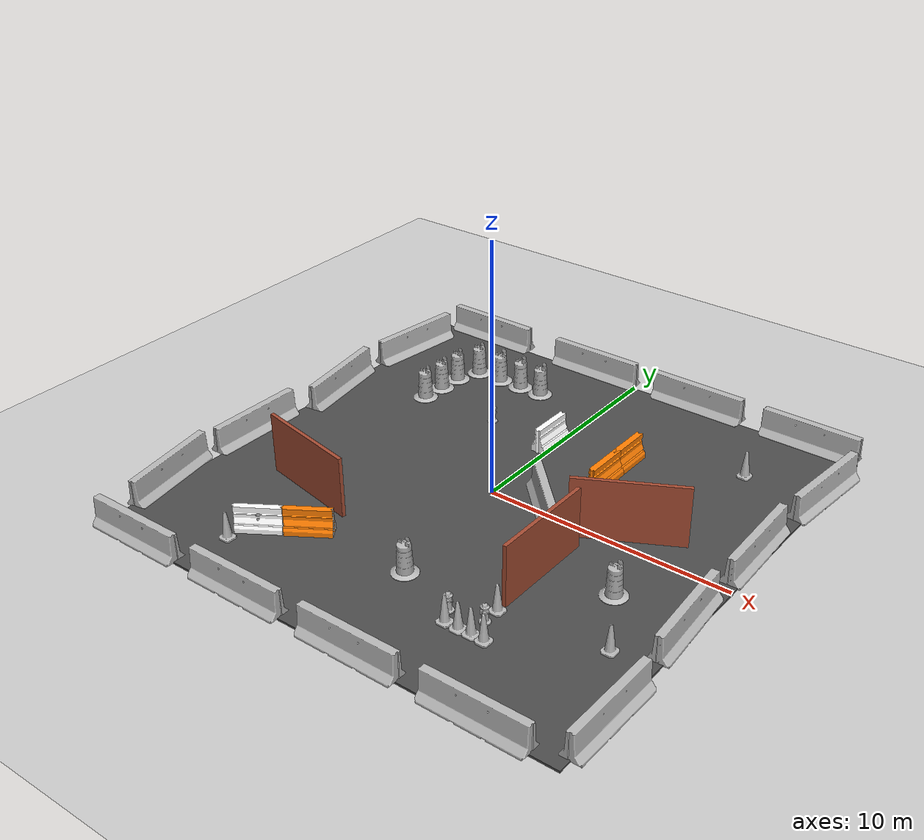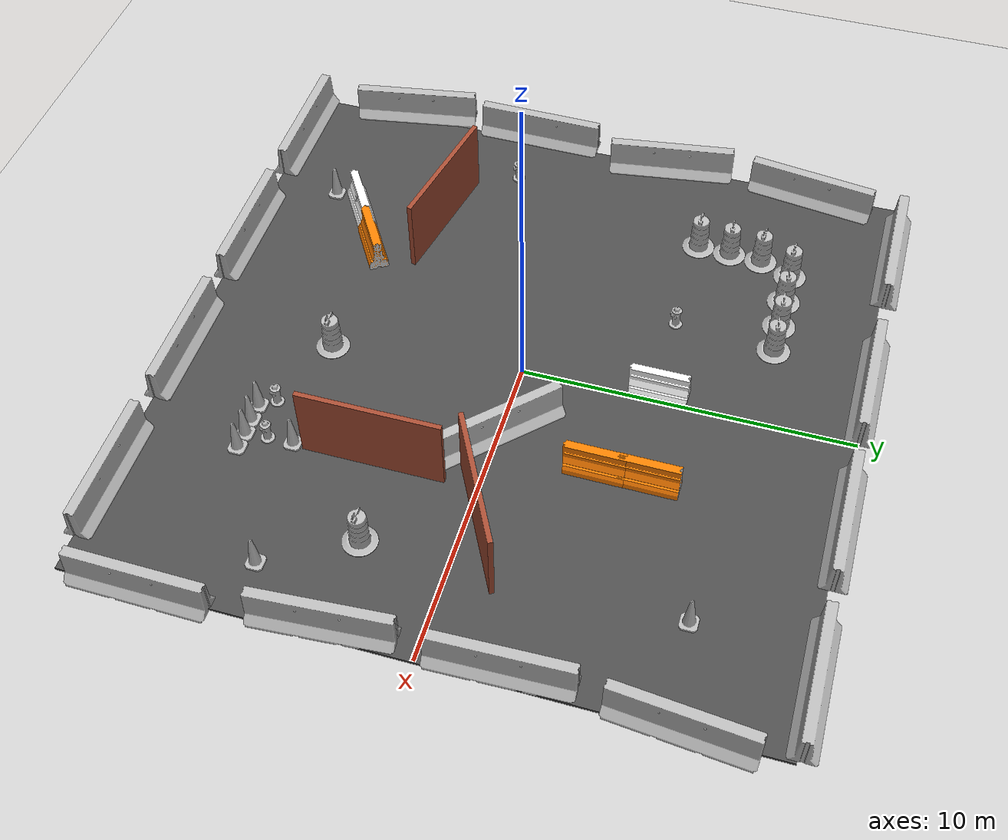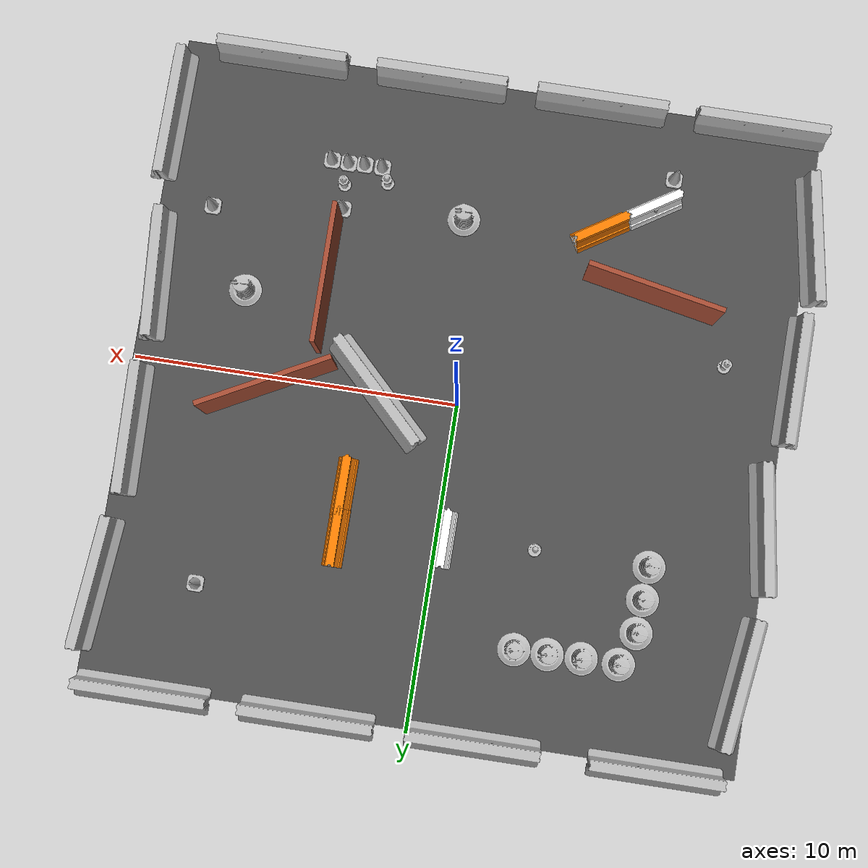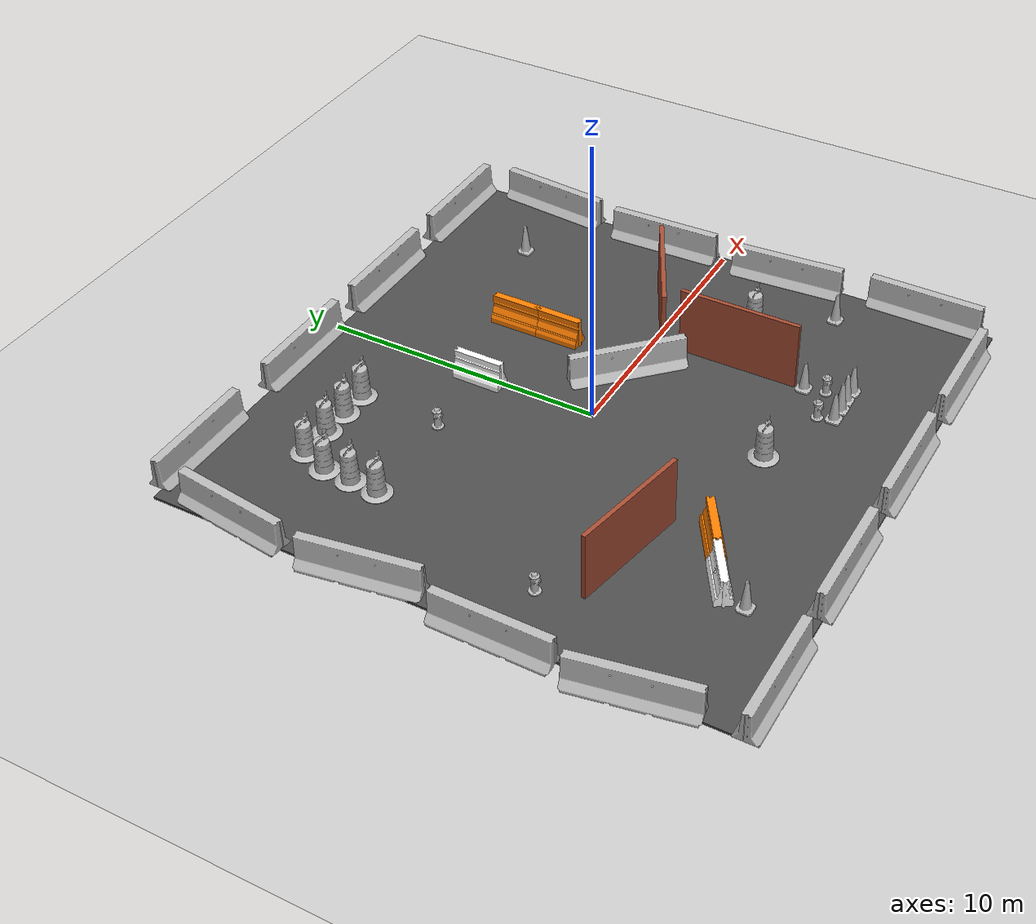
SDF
<sdf version="1.5">
 <world name="default">
  <light name="sun" type="directional">
   <pose>0 0 10 0 -0 0</pose>
   <diffuse>0.8 0.8 0.8 1</diffuse>
   <specular>0.2 0.2 0.2 1</specular>
   <attenuation>
    <range>1000</range>
    <constant>0.9</constant>
    <linear>0.01</linear>
    <quadratic>0.001</quadratic>
   </attenuation>
   <direction>-0.5 0.1 -0.9</direction>
  </light>
  <model name="ground_plane">
   <static>1</static>
   <link name="link">
    <collision name="collision">
     <geometry><plane><normal>0 0 1</normal><size>100 100</size></plane></geometry>
     <surface><friction><ode><mu>100</mu><mu2>50</mu2></ode></friction></surface>
    </collision>
    <visual name="visual">
     <cast_shadows>0</cast_shadows>
     <geometry><plane><normal>0 0 1</normal><size>100 100</size></plane></geometry>
     <material>
      <script><uri>file://media/materials/scripts/gazebo.material</uri><name>Gazebo/Grey</name></script>
     </material>
    </visual>
    <velocity_decay><linear>0</linear><angular>0</angular></velocity_decay>
   </link>
  </model>
  <physics name="default_physics" default="0" type="ode">
   <max_step_size>0.01</max_step_size>
   <real_time_factor>1</real_time_factor>
   <real_time_update_rate>100</real_time_update_rate>
   <gravity>0 0 -9.8</gravity>
   <magnetic_field>5.5645e-06 2.28758e-05 -4.23884e-05</magnetic_field>
  </physics>
  <scene><ambient>0.4 0.4 0.4 1</ambient><background>0.7 0.7 0.7 1</background><shadows>1</shadows></scene>
  <model name="jersey_barrier">
   <static>1</static>
   <link name="link">
    <visual name="visual">
     <geometry><mesh><uri>model://jersey_barrier/meshes/jersey_barrier.dae</uri></mesh></geometry>
    </visual>
    <collision name="upright">
     <pose>0 0 0.5715 0 -0 0</pose>
     <geometry><box><size>4.06542 0.3063 1.143</size></box></geometry>
    </collision>
    <collision name="base">
     <pose>0 0 0.032258 0 -0 0</pose>
     <geometry><box><size>4.06542 0.8107 0.064516</size></box></geometry>
    </collision>
    <collision name="base2">
     <pose>0 0 0.1 0 -0 0</pose>
     <geometry><box><size>4.06542 0.65 0.1</size></box></geometry>
    </collision>
    <collision name="base3">
     <pose>0 0 0.2 0 -0 0</pose>
     <geometry><box><size>4.06542 0.5 0.1</size></box></geometry>
    </collision>
    <collision name="left-angle">
     <pose>0 -0.224 0.2401 0.9 -0 0</pose>
     <geometry><box><size>4.06542 0.5 0.064516</size></box></geometry>
    </collision>
    <collision name="right-angle">
     <pose>0 0.224 0.2401 -0.9 0 0</pose>
     <geometry><box><size>4.06542 0.5 0.064516</size></box></geometry>
    </collision>
    <velocity_decay><linear>0</linear><angular>0</angular></velocity_decay>
   </link>
   <pose>-8 -10 0 0 -0 0</pose>
  </model>
  <model name="jersey_barrier_0">
   <static>1</static>
   <link name="link">
    <visual name="visual">
     <geometry><mesh><uri>model://jersey_barrier/meshes/jersey_barrier.dae</uri></mesh></geometry>
    </visual>
    <collision name="upright">
     <pose>0 0 0.5715 0 -0 0</pose>
     <geometry><box><size>4.06542 0.3063 1.143</size></box></geometry>
    </collision>
    <collision name="base">
     <pose>0 0 0.032258 0 -0 0</pose>
     <geometry><box><size>4.06542 0.8107 0.064516</size></box></geometry>
    </collision>
    <collision name="base2">
     <pose>0 0 0.1 0 -0 0</pose>
     <geometry><box><size>4.06542 0.65 0.1</size></box></geometry>
    </collision>
    <collision name="base3">
     <pose>0 0 0.2 0 -0 0</pose>
     <geometry><box><size>4.06542 0.5 0.1</size></box></geometry>
    </collision>
    <collision name="left-angle">
     <pose>0 -0.224 0.2401 0.9 -0 0</pose>
     <geometry><box><size>4.06542 0.5 0.064516</size></box></geometry>
    </collision>
    <collision name="right-angle">
     <pose>0 0.224 0.2401 -0.9 0 0</pose>
     <geometry><box><size>4.06542 0.5 0.064516</size></box></geometry>
    </collision>
    <velocity_decay><linear>0</linear><angular>0</angular></velocity_decay>
   </link>
   <pose>-3 -10 0 0 -0 0</pose>
  </model>
  <model name="jersey_barrier_1">
   <static>1</static>
   <link name="link">
    <visual name="visual">
     <geometry><mesh><uri>model://jersey_barrier/meshes/jersey_barrier.dae</uri></mesh></geometry>
    </visual>
    <collision name="upright">
     <pose>0 0 0.5715 0 -0 0</pose>
     <geometry><box><size>4.06542 0.3063 1.143</size></box></geometry>
    </collision>
    <collision name="base">
     <pose>0 0 0.032258 0 -0 0</pose>
     <geometry><box><size>4.06542 0.8107 0.064516</size></box></geometry>
    </collision>
    <collision name="base2">
     <pose>0 0 0.1 0 -0 0</pose>
     <geometry><box><size>4.06542 0.65 0.1</size></box></geometry>
    </collision>
    <collision name="base3">
     <pose>0 0 0.2 0 -0 0</pose>
     <geometry><box><size>4.06542 0.5 0.1</size></box></geometry>
    </collision>
    <collision name="left-angle">
     <pose>0 -0.224 0.2401 0.9 -0 0</pose>
     <geometry><box><size>4.06542 0.5 0.064516</size></box></geometry>
    </collision>
    <collision name="right-angle">
     <pose>0 0.224 0.2401 -0.9 0 0</pose>
     <geometry><box><size>4.06542 0.5 0.064516</size></box></geometry>
    </collision>
    <velocity_decay><linear>0</linear><angular>0</angular></velocity_decay>
   </link>
   <pose>2 -10 0 0 -0 0</pose>
  </model>
  <model name="jersey_barrier_2">
   <static>1</static>
   <link name="link">
    <visual name="visual">
     <geometry><mesh><uri>model://jersey_barrier/meshes/jersey_barrier.dae</uri></mesh></geometry>
    </visual>
    <collision name="upright">
     <pose>0 0 0.5715 0 -0 0</pose>
     <geometry><box><size>4.06542 0.3063 1.143</size></box></geometry>
    </collision>
    <collision name="base">
     <pose>0 0 0.032258 0 -0 0</pose>
     <geometry><box><size>4.06542 0.8107 0.064516</size></box></geometry>
    </collision>
    <collision name="base2">
     <pose>0 0 0.1 0 -0 0</pose>
     <geometry><box><size>4.06542 0.65 0.1</size></box></geometry>
    </collision>
    <collision name="base3">
     <pose>0 0 0.2 0 -0 0</pose>
     <geometry><box><size>4.06542 0.5 0.1</size></box></geometry>
    </collision>
    <collision name="left-angle">
     <pose>0 -0.224 0.2401 0.9 -0 0</pose>
     <geometry><box><size>4.06542 0.5 0.064516</size></box></geometry>
    </collision>
    <collision name="right-angle">
     <pose>0 0.224 0.2401 -0.9 0 0</pose>
     <geometry><box><size>4.06542 0.5 0.064516</size></box></geometry>
    </collision>
    <velocity_decay><linear>0</linear><angular>0</angular></velocity_decay>
   </link>
   <pose>7 -10 0 0 -0 0</pose>
  </model>
  <model name="jersey_barrier_3">
   <static>1</static>
   <link name="link">
    <visual name="visual">
     <geometry><mesh><uri>model://jersey_barrier/meshes/jersey_barrier.dae</uri></mesh></geometry>
    </visual>
    <collision name="upright">
     <pose>0 0 0.5715 0 -0 0</pose>
     <geometry><box><size>4.06542 0.3063 1.143</size></box></geometry>
    </collision>
    <collision name="base">
     <pose>0 0 0.032258 0 -0 0</pose>
     <geometry><box><size>4.06542 0.8107 0.064516</size></box></geometry>
    </collision>
    <collision name="base2">
     <pose>0 0 0.1 0 -0 0</pose>
     <geometry><box><size>4.06542 0.65 0.1</size></box></geometry>
    </collision>
    <collision name="base3">
     <pose>0 0 0.2 0 -0 0</pose>
     <geometry><box><size>4.06542 0.5 0.1</size></box></geometry>
    </collision>
    <collision name="left-angle">
     <pose>0 -0.224 0.2401 0.9 -0 0</pose>
     <geometry><box><size>4.06542 0.5 0.064516</size></box></geometry>
    </collision>
    <collision name="right-angle">
     <pose>0 0.224 0.2401 -0.9 0 0</pose>
     <geometry><box><size>4.06542 0.5 0.064516</size></box></geometry>
    </collision>
    <velocity_decay><linear>0</linear><angular>0</angular></velocity_decay>
   </link>
   <pose>-7.50675 10 0 0 -0 0</pose>
  </model>
  <model name="jersey_barrier_4">
   <static>1</static>
   <link name="link">
    <visual name="visual">
     <geometry><mesh><uri>model://jersey_barrier/meshes/jersey_barrier.dae</uri></mesh></geometry>
    </visual>
    <collision name="upright">
     <pose>0 0 0.5715 0 -0 0</pose>
     <geometry><box><size>4.06542 0.3063 1.143</size></box></geometry>
    </collision>
    <collision name="base">
     <pose>0 0 0.032258 0 -0 0</pose>
     <geometry><box><size>4.06542 0.8107 0.064516</size></box></geometry>
    </collision>
    <collision name="base2">
     <pose>0 0 0.1 0 -0 0</pose>
     <geometry><box><size>4.06542 0.65 0.1</size></box></geometry>
    </collision>
    <collision name="base3">
     <pose>0 0 0.2 0 -0 0</pose>
     <geometry><box><size>4.06542 0.5 0.1</size></box></geometry>
    </collision>
    <collision name="left-angle">
     <pose>0 -0.224 0.2401 0.9 -0 0</pose>
     <geometry><box><size>4.06542 0.5 0.064516</size></box></geometry>
    </collision>
    <collision name="right-angle">
     <pose>0 0.224 0.2401 -0.9 0 0</pose>
     <geometry><box><size>4.06542 0.5 0.064516</size></box></geometry>
    </collision>
    <velocity_decay><linear>0</linear><angular>0</angular></velocity_decay>
   </link>
   <pose>-2 10 0 0 -0 0</pose>
  </model>
  <model name="jersey_barrier_5">
   <static>1</static>
   <link name="link">
    <visual name="visual">
     <geometry><mesh><uri>model://jersey_barrier/meshes/jersey_barrier.dae</uri></mesh></geometry>
    </visual>
    <collision name="upright">
     <pose>0 0 0.5715 0 -0 0</pose>
     <geometry><box><size>4.06542 0.3063 1.143</size></box></geometry>
    </collision>
    <collision name="base">
     <pose>0 0 0.032258 0 -0 0</pose>
     <geometry><box><size>4.06542 0.8107 0.064516</size></box></geometry>
    </collision>
    <collision name="base2">
     <pose>0 0 0.1 0 -0 0</pose>
     <geometry><box><size>4.06542 0.65 0.1</size></box></geometry>
    </collision>
    <collision name="base3">
     <pose>0 0 0.2 0 -0 0</pose>
     <geometry><box><size>4.06542 0.5 0.1</size></box></geometry>
    </collision>
    <collision name="left-angle">
     <pose>0 -0.224 0.2401 0.9 -0 0</pose>
     <geometry><box><size>4.06542 0.5 0.064516</size></box></geometry>
    </collision>
    <collision name="right-angle">
     <pose>0 0.224 0.2401 -0.9 0 0</pose>
     <geometry><box><size>4.06542 0.5 0.064516</size></box></geometry>
    </collision>
    <velocity_decay><linear>0</linear><angular>0</angular></velocity_decay>
   </link>
   <pose>3 10 0 0 -0 0</pose>
  </model>
  <model name="jersey_barrier_6">
   <static>1</static>
   <link name="link">
    <visual name="visual">
     <geometry><mesh><uri>model://jersey_barrier/meshes/jersey_barrier.dae</uri></mesh></geometry>
    </visual>
    <collision name="upright">
     <pose>0 0 0.5715 0 -0 0</pose>
     <geometry><box><size>4.06542 0.3063 1.143</size></box></geometry>
    </collision>
    <collision name="base">
     <pose>0 0 0.032258 0 -0 0</pose>
     <geometry><box><size>4.06542 0.8107 0.064516</size></box></geometry>
    </collision>
    <collision name="base2">
     <pose>0 0 0.1 0 -0 0</pose>
     <geometry><box><size>4.06542 0.65 0.1</size></box></geometry>
    </collision>
    <collision name="base3">
     <pose>0 0 0.2 0 -0 0</pose>
     <geometry><box><size>4.06542 0.5 0.1</size></box></geometry>
    </collision>
    <collision name="left-angle">
     <pose>0 -0.224 0.2401 0.9 -0 0</pose>
     <geometry><box><size>4.06542 0.5 0.064516</size></box></geometry>
    </collision>
    <collision name="right-angle">
     <pose>0 0.224 0.2401 -0.9 0 0</pose>
     <geometry><box><size>4.06542 0.5 0.064516</size></box></geometry>
    </collision>
    <velocity_decay><linear>0</linear><angular>0</angular></velocity_decay>
   </link>
   <pose>8 10 0 0 -0 0</pose>
  </model>
  <model name="jersey_barrier_7">
   <static>1</static>
   <link name="link">
    <visual name="visual">
     <geometry><mesh><uri>model://jersey_barrier/meshes/jersey_barrier.dae</uri></mesh></geometry>
    </visual>
    <collision name="upright">
     <pose>0 0 0.5715 0 -0 0</pose>
     <geometry><box><size>4.06542 0.3063 1.143</size></box></geometry>
    </collision>
    <collision name="base">
     <pose>0 0 0.032258 0 -0 0</pose>
     <geometry><box><size>4.06542 0.8107 0.064516</size></box></geometry>
    </collision>
    <collision name="base2">
     <pose>0 0 0.1 0 -0 0</pose>
     <geometry><box><size>4.06542 0.65 0.1</size></box></geometry>
    </collision>
    <collision name="base3">
     <pose>0 0 0.2 0 -0 0</pose>
     <geometry><box><size>4.06542 0.5 0.1</size></box></geometry>
    </collision>
    <collision name="left-angle">
     <pose>0 -0.224 0.2401 0.9 -0 0</pose>
     <geometry><box><size>4.06542 0.5 0.064516</size></box></geometry>
    </collision>
    <collision name="right-angle">
     <pose>0 0.224 0.2401 -0.9 0 0</pose>
     <geometry><box><size>4.06542 0.5 0.064516</size></box></geometry>
    </collision>
    <velocity_decay><linear>0</linear><angular>0</angular></velocity_decay>
   </link>
   <pose>9.74902 -2.57759 0 0 -0 1.64</pose>
  </model>
  <model name="jersey_barrier_8">
   <static>1</static>
   <link name="link">
    <visual name="visual">
     <geometry><mesh><uri>model://jersey_barrier/meshes/jersey_barrier.dae</uri></mesh></geometry>
    </visual>
    <collision name="upright">
     <pose>0 0 0.5715 0 -0 0</pose>
     <geometry><box><size>4.06542 0.3063 1.143</size></box></geometry>
    </collision>
    <collision name="base">
     <pose>0 0 0.032258 0 -0 0</pose>
     <geometry><box><size>4.06542 0.8107 0.064516</size></box></geometry>
    </collision>
    <collision name="base2">
     <pose>0 0 0.1 0 -0 0</pose>
     <geometry><box><size>4.06542 0.65 0.1</size></box></geometry>
    </collision>
    <collision name="base3">
     <pose>0 0 0.2 0 -0 0</pose>
     <geometry><box><size>4.06542 0.5 0.1</size></box></geometry>
    </collision>
    <collision name="left-angle">
     <pose>0 -0.224 0.2401 0.9 -0 0</pose>
     <geometry><box><size>4.06542 0.5 0.064516</size></box></geometry>
    </collision>
    <collision name="right-angle">
     <pose>0 0.224 0.2401 -0.9 0 0</pose>
     <geometry><box><size>4.06542 0.5 0.064516</size></box></geometry>
    </collision>
    <velocity_decay><linear>0</linear><angular>0</angular></velocity_decay>
   </link>
   <pose>9.70141 2.24369 0 0 -0 1.6</pose>
  </model>
  <model name="jersey_barrier_9">
   <static>1</static>
   <link name="link">
    <visual name="visual">
     <geometry><mesh><uri>model://jersey_barrier/meshes/jersey_barrier.dae</uri></mesh></geometry>
    </visual>
    <collision name="upright">
     <pose>0 0 0.5715 0 -0 0</pose>
     <geometry><box><size>4.06542 0.3063 1.143</size></box></geometry>
    </collision>
    <collision name="base">
     <pose>0 0 0.032258 0 -0 0</pose>
     <geometry><box><size>4.06542 0.8107 0.064516</size></box></geometry>
    </collision>
    <collision name="base2">
     <pose>0 0 0.1 0 -0 0</pose>
     <geometry><box><size>4.06542 0.65 0.1</size></box></geometry>
    </collision>
    <collision name="base3">
     <pose>0 0 0.2 0 -0 0</pose>
     <geometry><box><size>4.06542 0.5 0.1</size></box></geometry>
    </collision>
    <collision name="left-angle">
     <pose>0 -0.224 0.2401 0.9 -0 0</pose>
     <geometry><box><size>4.06542 0.5 0.064516</size></box></geometry>
    </collision>
    <collision name="right-angle">
     <pose>0 0.224 0.2401 -0.9 0 0</pose>
     <geometry><box><size>4.06542 0.5 0.064516</size></box></geometry>
    </collision>
    <velocity_decay><linear>0</linear><angular>0</angular></velocity_decay>
   </link>
   <pose>-10.0607 -6.69856 0 0 0 -1.4</pose>
  </model>
  <model name="jersey_barrier_10">
   <static>1</static>
   <link name="link">
    <visual name="visual">
     <geometry><mesh><uri>model://jersey_barrier/meshes/jersey_barrier.dae</uri></mesh></geometry>
    </visual>
    <collision name="upright">
     <pose>0 0 0.5715 0 -0 0</pose>
     <geometry><box><size>4.06542 0.3063 1.143</size></box></geometry>
    </collision>
    <collision name="base">
     <pose>0 0 0.032258 0 -0 0</pose>
     <geometry><box><size>4.06542 0.8107 0.064516</size></box></geometry>
    </collision>
    <collision name="base2">
     <pose>0 0 0.1 0 -0 0</pose>
     <geometry><box><size>4.06542 0.65 0.1</size></box></geometry>
    </collision>
    <collision name="base3">
     <pose>0 0 0.2 0 -0 0</pose>
     <geometry><box><size>4.06542 0.5 0.1</size></box></geometry>
    </collision>
    <collision name="left-angle">
     <pose>0 -0.224 0.2401 0.9 -0 0</pose>
     <geometry><box><size>4.06542 0.5 0.064516</size></box></geometry>
    </collision>
    <collision name="right-angle">
     <pose>0 0.224 0.2401 -0.9 0 0</pose>
     <geometry><box><size>4.06542 0.5 0.064516</size></box></geometry>
    </collision>
    <velocity_decay><linear>0</linear><angular>0</angular></velocity_decay>
   </link>
   <pose>-10.0774 -2.27159 0 0 -0 1.56</pose>
  </model>
  <model name="jersey_barrier_11">
   <static>1</static>
   <link name="link">
    <visual name="visual">
     <geometry><mesh><uri>model://jersey_barrier/meshes/jersey_barrier.dae</uri></mesh></geometry>
    </visual>
    <collision name="upright">
     <pose>0 0 0.5715 0 -0 0</pose>
     <geometry><box><size>4.06542 0.3063 1.143</size></box></geometry>
    </collision>
    <collision name="base">
     <pose>0 0 0.032258 0 -0 0</pose>
     <geometry><box><size>4.06542 0.8107 0.064516</size></box></geometry>
    </collision>
    <collision name="base2">
     <pose>0 0 0.1 0 -0 0</pose>
     <geometry><box><size>4.06542 0.65 0.1</size></box></geometry>
    </collision>
    <collision name="base3">
     <pose>0 0 0.2 0 -0 0</pose>
     <geometry><box><size>4.06542 0.5 0.1</size></box></geometry>
    </collision>
    <collision name="left-angle">
     <pose>0 -0.224 0.2401 0.9 -0 0</pose>
     <geometry><box><size>4.06542 0.5 0.064516</size></box></geometry>
    </collision>
    <collision name="right-angle">
     <pose>0 0.224 0.2401 -0.9 0 0</pose>
     <geometry><box><size>4.06542 0.5 0.064516</size></box></geometry>
    </collision>
    <velocity_decay><linear>0</linear><angular>0</angular></velocity_decay>
   </link>
   <pose>-9.77013 2.34791 0 0 -0 1.72</pose>
  </model>
  <model name="jersey_barrier_12">
   <static>1</static>
   <link name="link">
    <visual name="visual">
     <geometry><mesh><uri>model://jersey_barrier/meshes/jersey_barrier.dae</uri></mesh></geometry>
    </visual>
    <collision name="upright">
     <pose>0 0 0.5715 0 -0 0</pose>
     <geometry><box><size>4.06542 0.3063 1.143</size></box></geometry>
    </collision>
    <collision name="base">
     <pose>0 0 0.032258 0 -0 0</pose>
     <geometry><box><size>4.06542 0.8107 0.064516</size></box></geometry>
    </collision>
    <collision name="base2">
     <pose>0 0 0.1 0 -0 0</pose>
     <geometry><box><size>4.06542 0.65 0.1</size></box></geometry>
    </collision>
    <collision name="base3">
     <pose>0 0 0.2 0 -0 0</pose>
     <geometry><box><size>4.06542 0.5 0.1</size></box></geometry>
    </collision>
    <collision name="left-angle">
     <pose>0 -0.224 0.2401 0.9 -0 0</pose>
     <geometry><box><size>4.06542 0.5 0.064516</size></box></geometry>
    </collision>
    <collision name="right-angle">
     <pose>0 0.224 0.2401 -0.9 0 0</pose>
     <geometry><box><size>4.06542 0.5 0.064516</size></box></geometry>
    </collision>
    <velocity_decay><linear>0</linear><angular>0</angular></velocity_decay>
   </link>
   <pose>10.0879 -7.62159 0 0 -0 1.56</pose>
  </model>
  <model name="jersey_barrier_13">
   <static>1</static>
   <link name="link">
    <visual name="visual">
     <geometry><mesh><uri>model://jersey_barrier/meshes/jersey_barrier.dae</uri></mesh></geometry>
    </visual>
    <collision name="upright">
     <pose>0 0 0.5715 0 -0 0</pose>
     <geometry><box><size>4.06542 0.3063 1.143</size></box></geometry>
    </collision>
    <collision name="base">
     <pose>0 0 0.032258 0 -0 0</pose>
     <geometry><box><size>4.06542 0.8107 0.064516</size></box></geometry>
    </collision>
    <collision name="base2">
     <pose>0 0 0.1 0 -0 0</pose>
     <geometry><box><size>4.06542 0.65 0.1</size></box></geometry>
    </collision>
    <collision name="base3">
     <pose>0 0 0.2 0 -0 0</pose>
     <geometry><box><size>4.06542 0.5 0.1</size></box></geometry>
    </collision>
    <collision name="left-angle">
     <pose>0 -0.224 0.2401 0.9 -0 0</pose>
     <geometry><box><size>4.06542 0.5 0.064516</size></box></geometry>
    </collision>
    <collision name="right-angle">
     <pose>0 0.224 0.2401 -0.9 0 0</pose>
     <geometry><box><size>4.06542 0.5 0.064516</size></box></geometry>
    </collision>
    <velocity_decay><linear>0</linear><angular>0</angular></velocity_decay>
   </link>
   <pose>10 7 0 0 -0 1.48</pose>
  </model>
  <model name="jersey_barrier_14">
   <static>1</static>
   <link name="link">
    <visual name="visual">
     <geometry><mesh><uri>model://jersey_barrier/meshes/jersey_barrier.dae</uri></mesh></geometry>
    </visual>
    <collision name="upright">
     <pose>0 0 0.5715 0 -0 0</pose>
     <geometry><box><size>4.06542 0.3063 1.143</size></box></geometry>
    </collision>
    <collision name="base">
     <pose>0 0 0.032258 0 -0 0</pose>
     <geometry><box><size>4.06542 0.8107 0.064516</size></box></geometry>
    </collision>
    <collision name="base2">
     <pose>0 0 0.1 0 -0 0</pose>
     <geometry><box><size>4.06542 0.65 0.1</size></box></geometry>
    </collision>
    <collision name="base3">
     <pose>0 0 0.2 0 -0 0</pose>
     <geometry><box><size>4.06542 0.5 0.1</size></box></geometry>
    </collision>
    <collision name="left-angle">
     <pose>0 -0.224 0.2401 0.9 -0 0</pose>
     <geometry><box><size>4.06542 0.5 0.064516</size></box></geometry>
    </collision>
    <collision name="right-angle">
     <pose>0 0.224 0.2401 -0.9 0 0</pose>
     <geometry><box><size>4.06542 0.5 0.064516</size></box></geometry>
    </collision>
    <velocity_decay><linear>0</linear><angular>0</angular></velocity_decay>
   </link>
   <pose>-9.64482 7.05946 0 0 -0 1.44</pose>
  </model>
  <model name="fire_hydrant">
   <static>1</static>
   <link name="link">
    <collision name="collision">
     <geometry><mesh><uri>model://fire_hydrant/meshes/fire_hydrant.dae</uri></mesh></geometry>
    </collision>
    <visual name="visual">
     <geometry><mesh><uri>model://fire_hydrant/meshes/fire_hydrant.dae</uri></mesh></geometry>
    </visual>
    <velocity_decay><linear>0</linear><angular>0</angular></velocity_decay>
   </link>
   <pose>3.18024 -6.51118 0 0 -0 0</pose>
  </model>
  <model name="fire_hydrant_0">
   <static>1</static>
   <link name="link">
    <collision name="collision">
     <geometry><mesh><uri>model://fire_hydrant/meshes/fire_hydrant.dae</uri></mesh></geometry>
    </collision>
    <visual name="visual">
     <geometry><mesh><uri>model://fire_hydrant/meshes/fire_hydrant.dae</uri></mesh></geometry>
    </visual>
    <velocity_decay><linear>0</linear><angular>0</angular></velocity_decay>
   </link>
   <pose>-3 4 0 0 -0 0</pose>
  </model>
  <model name="fire_hydrant_1">
   <static>1</static>
   <link name="link">
    <collision name="collision">
     <geometry><mesh><uri>model://fire_hydrant/meshes/fire_hydrant.dae</uri></mesh></geometry>
    </collision>
    <visual name="visual">
     <geometry><mesh><uri>model://fire_hydrant/meshes/fire_hydrant.dae</uri></mesh></geometry>
    </visual>
    <velocity_decay><linear>0</linear><angular>0</angular></velocity_decay>
   </link>
   <pose>-7.90686 -2.41363 0 0 -0 0</pose>
  </model>
  <model name="jersey_barrier_15">
   <static>1</static>
   <link name="link">
    <visual name="visual">
     <geometry><mesh><uri>model://jersey_barrier/meshes/jersey_barrier.dae</uri></mesh></geometry>
    </visual>
    <collision name="upright">
     <pose>0 0 0.5715 0 -0 0</pose>
     <geometry><box><size>4.06542 0.3063 1.143</size></box></geometry>
    </collision>
    <collision name="base">
     <pose>0 0 0.032258 0 -0 0</pose>
     <geometry><box><size>4.06542 0.8107 0.064516</size></box></geometry>
    </collision>
    <collision name="base2">
     <pose>0 0 0.1 0 -0 0</pose>
     <geometry><box><size>4.06542 0.65 0.1</size></box></geometry>
    </collision>
    <collision name="base3">
     <pose>0 0 0.2 0 -0 0</pose>
     <geometry><box><size>4.06542 0.5 0.1</size></box></geometry>
    </collision>
    <collision name="left-angle">
     <pose>0 -0.224 0.2401 0.9 -0 0</pose>
     <geometry><box><size>4.06542 0.5 0.064516</size></box></geometry>
    </collision>
    <collision name="right-angle">
     <pose>0 0.224 0.2401 -0.9 0 0</pose>
     <geometry><box><size>4.06542 0.5 0.064516</size></box></geometry>
    </collision>
    <velocity_decay><linear>0</linear><angular>0</angular></velocity_decay>
   </link>
   <pose>2.45495 0 0 0 -0 2.36</pose>
  </model>
  <model name="Construction Cone">
   <link name="link">
    <collision name="collision">
     <geometry>
      <mesh><scale>10 10 10</scale><uri>model://construction_cone/meshes/construction_cone.dae</uri></mesh>
     </geometry>
    </collision>
    <visual name="visual">
     <geometry>
      <mesh><scale>10 10 10</scale><uri>model://construction_cone/meshes/construction_cone.dae</uri></mesh>
     </geometry>
    </visual>
    <velocity_decay><linear>0</linear><angular>0</angular></velocity_decay>
    <inertial>
     <inertia><ixx>1</ixx><ixy>0</ixy><ixz>0</ixz><iyy>1</iyy><iyz>0</iyz><izz>1</izz></inertia>
     <mass>1</mass>
    </inertial>
   </link>
   <pose>-5.59121 -8 0.049102 3e-06 -1e-05 6e-06</pose>
   <static>0</static>
  </model>
  <model name="Construction Barrel">
   <link name="link">
    <inertial>
     <pose>0 0 0.4 0 -0 0</pose>
     <mass>500</mass>
     <inertia><ixx>51.2096</ixx><iyy>51.2096</iyy><izz>25</izz><ixy>0</ixy><ixz>0</ixz><iyz>0</iyz></inertia>
    </inertial>
    <collision name="collision">
     <geometry><mesh><uri>model://construction_barrel/meshes/construction_barrel.dae</uri></mesh></geometry>
    </collision>
    <visual name="visual">
     <geometry><mesh><uri>model://construction_barrel/meshes/construction_barrel.dae</uri></mesh></geometry>
    </visual>
    <velocity_decay><linear>0</linear><angular>0</angular></velocity_decay>
   </link>
   <pose>7.00012 -2.54616 0.049905 -0.000187 -0.000367 0.000141</pose>
   <static>0</static>
  </model>
  <model name="Construction Cone_0">
   <link name="link">
    <collision name="collision">
     <geometry>
      <mesh><scale>10 10 10</scale><uri>model://construction_cone/meshes/construction_cone.dae</uri></mesh>
     </geometry>
    </collision>
    <visual name="visual">
     <geometry>
      <mesh><scale>10 10 10</scale><uri>model://construction_cone/meshes/construction_cone.dae</uri></mesh>
     </geometry>
    </visual>
    <velocity_decay><linear>0</linear><angular>0</angular></velocity_decay>
    <inertial>
     <inertia><ixx>1</ixx><ixy>0</ixy><ixz>0</ixz><iyy>1</iyy><iyz>0</iyz><izz>1</izz></inertia>
     <mass>1</mass>
    </inertial>
   </link>
   <pose>6.99685 6.55732 0.049102 3e-06 -1e-05 -0.007006</pose>
   <static>0</static>
  </model>
  <model name="Construction Barrel_0">
   <link name="link">
    <inertial>
     <pose>0 0 0.4 0 -0 0</pose>
     <mass>500</mass>
     <inertia><ixx>51.2096</ixx><iyy>51.2096</iyy><izz>25</izz><ixy>0</ixy><ixz>0</ixz><iyz>0</iyz></inertia>
    </inertial>
    <collision name="collision">
     <geometry><mesh><uri>model://construction_barrel/meshes/construction_barrel.dae</uri></mesh></geometry>
    </collision>
    <visual name="visual">
     <geometry><mesh><uri>model://construction_barrel/meshes/construction_barrel.dae</uri></mesh></geometry>
    </visual>
    <velocity_decay><linear>0</linear><angular>0</angular></velocity_decay>
   </link>
   <pose>0.673627 -5.75033 0.049884 0.000469 -9e-06 -0.000222</pose>
   <static>0</static>
  </model>
  <model name="asphalt_plane">
   <static>1</static>
   <link name="link">
    <collision name="collision"><geometry><box><size>20 20 0.1</size></box></geometry></collision>
    <visual name="visual">
     <cast_shadows>0</cast_shadows>
     <geometry><box><size>20 20 0.1</size></box></geometry>
     <material>
      <script>
       <uri>model://asphalt_plane/materials/scripts</uri>
       <uri>model://asphalt_plane/materials/textures</uri>
       <name>vrc/asphalt</name>
      </script>
     </material>
    </visual>
    <velocity_decay><linear>0</linear><angular>0</angular></velocity_decay>
   </link>
   <pose>0.076733 -0.110379 0 0 -0 0</pose>
  </model>
  <model name="Construction Barrel_1">
   <link name="link">
    <inertial>
     <pose>0 0 0.4 0 -0 0</pose>
     <mass>500</mass>
     <inertia><ixx>51.2096</ixx><iyy>51.2096</iyy><izz>25</izz><ixy>0</ixy><ixz>0</ixz><iyz>0</iyz></inertia>
    </inertial>
    <collision name="collision">
     <geometry><mesh><uri>model://construction_barrel/meshes/construction_barrel.dae</uri></mesh></geometry>
    </collision>
    <visual name="visual">
     <geometry><mesh><uri>model://construction_barrel/meshes/construction_barrel.dae</uri></mesh></geometry>
    </visual>
    <velocity_decay><linear>0</linear><angular>0</angular></velocity_decay>
   </link>
   <pose>-6.50441 3.98309 0.049896 -6.8e-05 -0.000386 -0.009464</pose>
   <static>0</static>
  </model>
  <model name="Construction Barrel_2">
   <link name="link">
    <inertial>
     <pose>0 0 0.4 0 -0 0</pose>
     <mass>500</mass>
     <inertia><ixx>51.2096</ixx><iyy>51.2096</iyy><izz>25</izz><ixy>0</ixy><ixz>0</ixz><iyz>0</iyz></inertia>
    </inertial>
    <collision name="collision">
     <geometry><mesh><uri>model://construction_barrel/meshes/construction_barrel.dae</uri></mesh></geometry>
    </collision>
    <visual name="visual">
     <geometry><mesh><uri>model://construction_barrel/meshes/construction_barrel.dae</uri></mesh></geometry>
    </visual>
    <velocity_decay><linear>0</linear><angular>0</angular></velocity_decay>
   </link>
   <pose>-6.45056 4.99658 0.04988 0.000479 -5e-06 0.064778</pose>
   <static>0</static>
  </model>
  <model name="Construction Barrel_3">
   <link name="link">
    <inertial>
     <pose>0 0 0.4 0 -0 0</pose>
     <mass>500</mass>
     <inertia><ixx>51.2096</ixx><iyy>51.2096</iyy><izz>25</izz><ixy>0</ixy><ixz>0</ixz><iyz>0</iyz></inertia>
    </inertial>
    <collision name="collision">
     <geometry><mesh><uri>model://construction_barrel/meshes/construction_barrel.dae</uri></mesh></geometry>
    </collision>
    <visual name="visual">
     <geometry><mesh><uri>model://construction_barrel/meshes/construction_barrel.dae</uri></mesh></geometry>
    </visual>
    <velocity_decay><linear>0</linear><angular>0</angular></velocity_decay>
   </link>
   <pose>-6.40164 6.01135 0.049928 0.000333 5.5e-05 -0.120786</pose>
   <static>0</static>
  </model>
  <model name="Construction Barrel_4">
   <link name="link">
    <inertial>
     <pose>0 0 0.4 0 -0 0</pose>
     <mass>500</mass>
     <inertia><ixx>51.2096</ixx><iyy>51.2096</iyy><izz>25</izz><ixy>0</ixy><ixz>0</ixz><iyz>0</iyz></inertia>
    </inertial>
    <collision name="collision">
     <geometry><mesh><uri>model://construction_barrel/meshes/construction_barrel.dae</uri></mesh></geometry>
    </collision>
    <visual name="visual">
     <geometry><mesh><uri>model://construction_barrel/meshes/construction_barrel.dae</uri></mesh></geometry>
    </visual>
    <velocity_decay><linear>0</linear><angular>0</angular></velocity_decay>
   </link>
   <pose>-6.00599 7.00925 0.049894 -0.000101 -0.000425 -0.049462</pose>
   <static>0</static>
  </model>
  <model name="Construction Barrel_5">
   <link name="link">
    <inertial>
     <pose>0 0 0.4 0 -0 0</pose>
     <mass>500</mass>
     <inertia><ixx>51.2096</ixx><iyy>51.2096</iyy><izz>25</izz><ixy>0</ixy><ixz>0</ixz><iyz>0</iyz></inertia>
    </inertial>
    <collision name="collision">
     <geometry><mesh><uri>model://construction_barrel/meshes/construction_barrel.dae</uri></mesh></geometry>
    </collision>
    <visual name="visual">
     <geometry><mesh><uri>model://construction_barrel/meshes/construction_barrel.dae</uri></mesh></geometry>
    </visual>
    <velocity_decay><linear>0</linear><angular>0</angular></velocity_decay>
   </link>
   <pose>-4.87551 7.00833 0.049874 0.000494 1.35525e-20 0.146022</pose>
   <static>0</static>
  </model>
  <model name="Construction Barrel_6">
   <link name="link">
    <inertial>
     <pose>0 0 0.4 0 -0 0</pose>
     <mass>500</mass>
     <inertia><ixx>51.2096</ixx><iyy>51.2096</iyy><izz>25</izz><ixy>0</ixy><ixz>0</ixz><iyz>0</iyz></inertia>
    </inertial>
    <collision name="collision">
     <geometry><mesh><uri>model://construction_barrel/meshes/construction_barrel.dae</uri></mesh></geometry>
    </collision>
    <visual name="visual">
     <geometry><mesh><uri>model://construction_barrel/meshes/construction_barrel.dae</uri></mesh></geometry>
    </visual>
    <velocity_decay><linear>0</linear><angular>0</angular></velocity_decay>
   </link>
   <pose>-3.84341 7.04208 0.049913 0.000414 5.6e-05 0.030495</pose>
   <static>0</static>
  </model>
  <model name="Construction Barrel_7">
   <link name="link">
    <inertial>
     <pose>0 0 0.4 0 -0 0</pose>
     <mass>500</mass>
     <inertia><ixx>51.2096</ixx><iyy>51.2096</iyy><izz>25</izz><ixy>0</ixy><ixz>0</ixz><iyz>0</iyz></inertia>
    </inertial>
    <collision name="collision">
     <geometry><mesh><uri>model://construction_barrel/meshes/construction_barrel.dae</uri></mesh></geometry>
    </collision>
    <visual name="visual">
     <geometry><mesh><uri>model://construction_barrel/meshes/construction_barrel.dae</uri></mesh></geometry>
    </visual>
    <velocity_decay><linear>0</linear><angular>0</angular></velocity_decay>
   </link>
   <pose>-2.8274 7.05092 0.049917 -0.000167 -0.00032 0.06133</pose>
   <static>0</static>
  </model>
  <model name="Construction Cone_1">
   <link name="link">
    <collision name="collision">
     <geometry>
      <mesh><scale>10 10 10</scale><uri>model://construction_cone/meshes/construction_cone.dae</uri></mesh>
     </geometry>
    </collision>
    <visual name="visual">
     <geometry>
      <mesh><scale>10 10 10</scale><uri>model://construction_cone/meshes/construction_cone.dae</uri></mesh>
     </geometry>
    </visual>
    <velocity_decay><linear>0</linear><angular>0</angular></velocity_decay>
    <inertial>
     <inertia><ixx>1</ixx><ixy>0</ixy><ixz>0</ixz><iyy>1</iyy><iyz>0</iyz><izz>1</izz></inertia>
     <mass>1</mass>
    </inertial>
   </link>
   <pose>8.42887 -5 0.049102 3e-06 -1e-05 6e-06</pose>
   <static>0</static>
  </model>
  <spherical_coordinates>
   <surface_model>EARTH_WGS84</surface_model>
   <latitude_deg>0</latitude_deg>
   <longitude_deg>0</longitude_deg>
   <elevation>0</elevation>
   <heading_deg>0</heading_deg>
  </spherical_coordinates>
  <model name="worlds">
   <pose>4.45045 -3.07992 0 0 -0 0</pose>
   <link name="Wall_0">
    <collision name="Wall_0_Collision">
     <geometry><box><size>4.25 0.15 2.5</size></box></geometry>
     <pose>0 0 1.25 0 -0 0</pose>
    </collision>
    <visual name="Wall_0_Visual">
     <pose>0 0 1.25 0 -0 0</pose>
     <geometry><box><size>4.25 0.15 2.5</size></box></geometry>
     <material>
      <script><uri>file://media/materials/scripts/gazebo.material</uri><name>Gazebo/Bricks</name></script>
      <ambient>1 1 1 1</ambient>
     </material>
    </visual>
    <pose>0 -0 0 0 -0 1.5708</pose>
   </link>
   <static>1</static>
  </model>
  <model name="worlds_0">
   <pose>5.69388 0.374648 0 0 0 -1.0847</pose>
   <link name="Wall_0">
    <collision name="Wall_0_Collision">
     <geometry><box><size>4.25 0.15 2.5</size></box></geometry>
     <pose>0 0 1.25 0 -0 0</pose>
    </collision>
    <visual name="Wall_0_Visual">
     <pose>0 0 1.25 0 -0 0</pose>
     <geometry><box><size>4.25 0.15 2.5</size></box></geometry>
     <material>
      <script><uri>file://media/materials/scripts/gazebo.material</uri><name>Gazebo/Bricks</name></script>
      <ambient>1 1 1 1</ambient>
     </material>
    </visual>
    <pose>0 -0 0 0 -0 1.5708</pose>
   </link>
   <static>1</static>
  </model>
  <model name="drc_practice_white_jersey_barrier">
   <static>1</static>
   <link name="link">
    <visual name="visual">
     <geometry>
      <mesh><uri>model://drc_practice_white_jersey_barrier/meshes/jersey_barrier.dae</uri></mesh>
     </geometry>
    </visual>
    <collision name="collision">
     <geometry>
      <mesh><uri>model://drc_practice_white_jersey_barrier/meshes/jersey_barrier.dae</uri></mesh>
     </geometry>
    </collision>
   </link>
   <pose>-0.246773 4.11228 0 0 -0 0</pose>
  </model>
  <model name="drc_practice_organge_jersey_barrier">
   <static>1</static>
   <link name="link">
    <visual name="visual">
     <geometry>
      <mesh><uri>model://drc_practice_orange_jersey_barrier/meshes/jersey_barrier.dae</uri></mesh>
     </geometry>
    </visual>
    <collision name="collision">
     <geometry>
      <mesh><uri>model://drc_practice_orange_jersey_barrier/meshes/jersey_barrier.dae</uri></mesh>
     </geometry>
    </collision>
   </link>
   <pose>3 3 0 0 -0 0</pose>
  </model>
  <model name="drc_practice_organge_jersey_barrier_0">
   <static>1</static>
   <link name="link">
    <visual name="visual">
     <geometry>
      <mesh><uri>model://drc_practice_orange_jersey_barrier/meshes/jersey_barrier.dae</uri></mesh>
     </geometry>
    </visual>
    <collision name="collision">
     <geometry>
      <mesh><uri>model://drc_practice_orange_jersey_barrier/meshes/jersey_barrier.dae</uri></mesh>
     </geometry>
    </collision>
   </link>
   <pose>3 4.55782 0 0 -0 0</pose>
  </model>
  <model name="Construction Cone_2">
   <link name="link">
    <collision name="collision">
     <geometry>
      <mesh><scale>10 10 10</scale><uri>model://construction_cone/meshes/construction_cone.dae</uri></mesh>
     </geometry>
    </collision>
    <visual name="visual">
     <geometry>
      <mesh><scale>10 10 10</scale><uri>model://construction_cone/meshes/construction_cone.dae</uri></mesh>
     </geometry>
    </visual>
    <inertial>
     <inertia><ixx>1</ixx><ixy>0</ixy><ixz>0</ixz><iyy>1</iyy><iyz>0</iyz><izz>1</izz></inertia>
     <mass>1</mass>
    </inertial>
   </link>
   <pose>5 -7 0.049102 3e-06 -1e-05 5e-06</pose>
  </model>
  <model name="Construction Cone_3">
   <link name="link">
    <collision name="collision">
     <geometry>
      <mesh><scale>10 10 10</scale><uri>model://construction_cone/meshes/construction_cone.dae</uri></mesh>
     </geometry>
    </collision>
    <visual name="visual">
     <geometry>
      <mesh><scale>10 10 10</scale><uri>model://construction_cone/meshes/construction_cone.dae</uri></mesh>
     </geometry>
    </visual>
    <inertial>
     <inertia><ixx>1</ixx><ixy>0</ixy><ixz>0</ixz><iyy>1</iyy><iyz>0</iyz><izz>1</izz></inertia>
     <mass>1</mass>
    </inertial>
   </link>
   <pose>4.47849 -6.98103 0.049102 3e-06 -1e-05 -0.006013</pose>
  </model>
  <model name="Construction Cone_4">
   <link name="link">
    <collision name="collision">
     <geometry>
      <mesh><scale>10 10 10</scale><uri>model://construction_cone/meshes/construction_cone.dae</uri></mesh>
     </geometry>
    </collision>
    <visual name="visual">
     <geometry>
      <mesh><scale>10 10 10</scale><uri>model://construction_cone/meshes/construction_cone.dae</uri></mesh>
     </geometry>
    </visual>
    <inertial>
     <inertia><ixx>1</ixx><ixy>0</ixy><ixz>0</ixz><iyy>1</iyy><iyz>0</iyz><izz>1</izz></inertia>
     <mass>1</mass>
    </inertial>
   </link>
   <pose>3.97338 -7.00814 0.049102 3e-06 -1e-05 0.000321</pose>
  </model>
  <model name="Construction Cone_5">
   <link name="link">
    <collision name="collision">
     <geometry>
      <mesh><scale>10 10 10</scale><uri>model://construction_cone/meshes/construction_cone.dae</uri></mesh>
     </geometry>
    </collision>
    <visual name="visual">
     <geometry>
      <mesh><scale>10 10 10</scale><uri>model://construction_cone/meshes/construction_cone.dae</uri></mesh>
     </geometry>
    </visual>
    <inertial>
     <inertia><ixx>1</ixx><ixy>0</ixy><ixz>0</ixz><iyy>1</iyy><iyz>0</iyz><izz>1</izz></inertia>
     <mass>1</mass>
    </inertial>
   </link>
   <pose>3.41885 -7 0.049102 3e-06 -1e-05 4e-06</pose>
  </model>
  <model name="Construction Cone_6">
   <link name="link">
    <collision name="collision">
     <geometry>
      <mesh><scale>10 10 10</scale><uri>model://construction_cone/meshes/construction_cone.dae</uri></mesh>
     </geometry>
    </collision>
    <visual name="visual">
     <geometry>
      <mesh><scale>10 10 10</scale><uri>model://construction_cone/meshes/construction_cone.dae</uri></mesh>
     </geometry>
    </visual>
    <inertial>
     <inertia><ixx>1</ixx><ixy>0</ixy><ixz>0</ixz><iyy>1</iyy><iyz>0</iyz><izz>1</izz></inertia>
     <mass>1</mass>
    </inertial>
   </link>
   <pose>4.42882 -5.5244 0.049102 3e-06 -1e-05 4e-06</pose>
  </model>
  <model name="fire_hydrant_2">
   <static>1</static>
   <link name="link">
    <collision name="collision">
     <geometry><mesh><uri>model://fire_hydrant/meshes/fire_hydrant.dae</uri></mesh></geometry>
    </collision>
    <visual name="visual">
     <geometry><mesh><uri>model://fire_hydrant/meshes/fire_hydrant.dae</uri></mesh></geometry>
    </visual>
   </link>
   <pose>4.49055 -6.27056 0 0 -0 0</pose>
  </model>
  <model name="worlds_1">
   <pose>-5.33178 -4.13324 0 0 -0 1.37871</pose>
   <link name="Wall_0">
    <collision name="Wall_0_Collision">
     <geometry><box><size>4.25 0.15 2.5</size></box></geometry>
     <pose>0 0 1.25 0 -0 0</pose>
    </collision>
    <visual name="Wall_0_Visual">
     <pose>0 0 1.25 0 -0 0</pose>
     <geometry><box><size>4.25 0.15 2.5</size></box></geometry>
     <material>
      <script><uri>file://media/materials/scripts/gazebo.material</uri><name>Gazebo/Bricks</name></script>
      <ambient>1 1 1 1</ambient>
     </material>
    </visual>
    <pose>0 -0 0 0 -0 1.5708</pose>
   </link>
   <static>1</static>
  </model>
  <model name="drc_practice_organge_jersey_barrier_2">
   <static>1</static>
   <link name="link">
    <visual name="visual">
     <geometry>
      <mesh><uri>model://drc_practice_orange_jersey_barrier/meshes/jersey_barrier.dae</uri></mesh>
     </geometry>
    </visual>
    <collision name="collision">
     <geometry>
      <mesh><uri>model://drc_practice_orange_jersey_barrier/meshes/jersey_barrier.dae</uri></mesh>
     </geometry>
    </collision>
   </link>
   <pose>-3.53993 -5.98862 0 0 0 -1</pose>
  </model>
  <model name="drc_practice_white_jersey_barrier_0">
   <static>1</static>
   <link name="link">
    <visual name="visual">
     <geometry>
      <mesh><uri>model://drc_practice_white_jersey_barrier/meshes/jersey_barrier.dae</uri></mesh>
     </geometry>
    </visual>
    <collision name="collision">
     <geometry>
      <mesh><uri>model://drc_practice_white_jersey_barrier/meshes/jersey_barrier.dae</uri></mesh>
     </geometry>
    </collision>
   </link>
   <static>1</static>
   <link name="link">
    <collision name="collision">
     <geometry><mesh><uri>model://fire_hydrant/meshes/fire_hydrant.dae</uri></mesh></geometry>
    </collision>
    <visual name="visual">
     <geometry><mesh><uri>model://fire_hydrant/meshes/fire_hydrant.dae</uri></mesh></geometry>
    </visual>
   </link>
   <pose>-5.06131 -6.93421 0 0 0 -1</pose>
  </model>
 </world>
</sdf>
